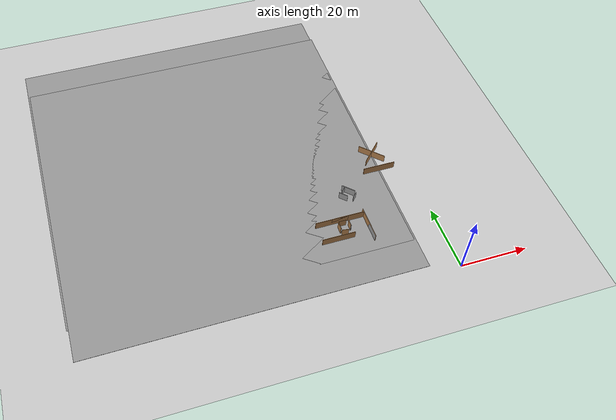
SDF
<sdf version="1.5">
 <world name="default">
  <model name="ground_plane">
   <static>1</static>
   <link name="link">
    <collision name="collision">
     <geometry><plane><normal>0 0 1</normal><size>100 100</size></plane></geometry>
     <surface><friction><ode><mu>100</mu><mu2>50</mu2></ode></friction></surface>
    </collision>
    <visual name="visual">
     <cast_shadows>0</cast_shadows>
     <geometry><plane><normal>0 0 1</normal><size>100 100</size></plane></geometry>
     <material>
      <script><uri>file://media/materials/scripts/gazebo.material</uri><name>Gazebo/Grey</name></script>
     </material>
    </visual>
   </link>
  </model>
  <model name="ground_plane_7">
   <static>1</static>
   <link name="link">
    <collision name="collision">
     <geometry><plane><normal>0 0 1</normal><size>100 100</size></plane></geometry>
     <surface><friction><ode><mu>100</mu><mu2>50</mu2></ode></friction></surface>
    </collision>
    <visual name="visual">
     <cast_shadows>0</cast_shadows>
     <geometry><plane><normal>0 0 1</normal><size>100 100</size></plane></geometry>
     <material>
      <script><uri>file://media/materials/scripts/gazebo.material</uri><name>Gazebo/Grey</name></script>
     </material>
    </visual>
   </link>
   <pose>-58.5079 52.5615 0 0 -0 0</pose>
  </model>
  <model name="ground_plane_9">
   <static>1</static>
   <link name="link">
    <collision name="collision">
     <geometry><plane><normal>0 0 1</normal><size>100 100</size></plane></geometry>
     <surface><friction><ode><mu>100</mu><mu2>50</mu2></ode></friction></surface>
    </collision>
    <visual name="visual">
     <cast_shadows>0</cast_shadows>
     <geometry><plane><normal>0 0 1</normal><size>100 100</size></plane></geometry>
     <material>
      <script><uri>file://media/materials/scripts/gazebo.material</uri><name>Gazebo/Grey</name></script>
     </material>
    </visual>
   </link>
   <pose>-59 62 0 0 -0 0</pose>
  </model>
  <model name="wall-10m-ofoghi_12">
   <pose>-9 39 0 0 -0 0</pose>
   <link name="Wall_22">
    <collision name="Wall_22_Collision">
     <geometry><box><size>10 0.15 2.5</size></box></geometry>
     <pose>0 0 1.25 0 -0 0</pose>
    </collision>
    <visual name="Wall_22_Visual">
     <pose>0 0 1.25 0 -0 0</pose>
     <geometry><box><size>10 0.15 2.5</size></box></geometry>
     <material>
      <script><uri>file://media/materials/scripts/gazebo.material</uri><name>Gazebo/Wood</name></script>
      <ambient>1 1 1 1</ambient>
     </material>
    </visual>
   </link>
   <static>1</static>
  </model>
  <model name="obs3">
   <pose>-9 45 0 0 -0 0</pose>
   <link name="Wall_0">
    <collision name="Wall_0_Collision">
     <geometry><box><size>8.63528 0.15 2.5</size></box></geometry>
     <pose>0 0 1.25 0 -0 0</pose>
    </collision>
    <visual name="Wall_0_Visual">
     <pose>0 0 1.25 0 -0 0</pose>
     <geometry><box><size>8.63528 0.15 2.5</size></box></geometry>
     <material>
      <script><uri>file://media/materials/scripts/gazebo.material</uri><name>Gazebo/Wood</name></script>
      <ambient>1 1 1 1</ambient>
     </material>
    </visual>
    <pose>0 0 0 0 0 -0.785398</pose>
   </link>
   <link name="Wall_2">
    <collision name="Wall_2_Collision">
     <geometry><box><size>8.63528 0.15 2.5</size></box></geometry>
     <pose>0 0 1.25 0 -0 0</pose>
    </collision>
    <visual name="Wall_2_Visual">
     <pose>0 0 1.25 0 -0 0</pose>
     <geometry><box><size>8.63528 0.15 2.5</size></box></geometry>
     <material>
      <script><uri>file://media/materials/scripts/gazebo.material</uri><name>Gazebo/Wood</name></script>
      <ambient>1 1 1 1</ambient>
     </material>
    </visual>
    <pose>0 0 0 0 0 -2.35619</pose>
   </link>
   <static>1</static>
  </model>
  <model name="obs2_1">
   <pose>-22 32.4816 0 0 -0 0</pose>
   <link name="Wall_0">
    <collision name="Wall_0_Collision">
     <geometry><box><size>2 0.15 2.5</size></box></geometry>
     <pose>0 0 1.25 0 -0 0</pose>
    </collision>
    <visual name="Wall_0_Visual">
     <pose>0 0 1.25 0 -0 0</pose>
     <geometry><box><size>2 0.15 2.5</size></box></geometry>
     <material>
      <script><uri>file://media/materials/scripts/gazebo.material</uri><name>Gazebo/Grey</name></script>
      <ambient>1 1 1 1</ambient>
     </material>
    </visual>
    <pose>-0.796332 1.10862 0 0 -0 0.785398</pose>
   </link>
   <link name="Wall_2">
    <collision name="Wall_2_Collision">
     <geometry><box><size>4.25 0.15 2.5</size></box></geometry>
     <pose>0 0 1.25 0 -0 0</pose>
    </collision>
    <visual name="Wall_2_Visual">
     <pose>0 0 1.25 0 -0 0</pose>
     <geometry><box><size>4.25 0.15 2.5</size></box></geometry>
     <material>
      <script><uri>file://media/materials/scripts/gazebo.material</uri><name>Gazebo/Grey</name></script>
      <ambient>1 1 1 1</ambient>
     </material>
    </visual>
    <pose>0.773928 0.982661 0 0 0 -0.785398</pose>
   </link>
   <link name="Wall_4">
    <collision name="Wall_4_Collision">
     <geometry><box><size>2.75 0.15 2.5</size></box></geometry>
     <pose>0 0 1.25 0 -0 0</pose>
    </collision>
    <visual name="Wall_4_Visual">
     <pose>0 0 1.25 0 -0 0</pose>
     <geometry><box><size>2.75 0.15 2.5</size></box></geometry>
     <material>
      <script><uri>file://media/materials/scripts/gazebo.material</uri><name>Gazebo/Grey</name></script>
      <ambient>1 1 1 1</ambient>
     </material>
    </visual>
    <pose>-1.45556 -0.740711 0 0 0 -0.785398</pose>
   </link>
   <link name="Wall_6">
    <collision name="Wall_6_Collision">
     <geometry><box><size>2 0.15 2.5</size></box></geometry>
     <pose>0 0 1.25 0 -0 0</pose>
    </collision>
    <visual name="Wall_6_Visual">
     <pose>0 0 1.25 0 -0 0</pose>
     <geometry><box><size>2 0.15 2.5</size></box></geometry>
     <material>
      <script><uri>file://media/materials/scripts/gazebo.material</uri><name>Gazebo/Grey</name></script>
      <ambient>1 1 1 1</ambient>
     </material>
    </visual>
    <pose>1.72073 -1.77816 0 0 -0 0.785398</pose>
   </link>
   <static>1</static>
  </model>
  <model name="obs1_9">
   <pose>-27 21 0 0 -0 0</pose>
   <link name="Wall_10">
    <collision name="Wall_10_Collision">
     <geometry><box><size>2 0.15 2.5</size></box></geometry>
     <pose>0 0 1.25 0 -0 0</pose>
    </collision>
    <visual name="Wall_10_Visual">
     <pose>0 0 1.25 0 -0 0</pose>
     <geometry><box><size>2 0.15 2.5</size></box></geometry>
     <material>
      <script><uri>file://media/materials/scripts/gazebo.material</uri><name>Gazebo/Wood</name></script>
      <ambient>1 1 1 1</ambient>
     </material>
    </visual>
    <pose>-0.505188 -1.46687 0 0 0 -0.261799</pose>
   </link>
   <link name="Wall_2">
    <collision name="Wall_2_Collision">
     <geometry><box><size>2.25 0.15 2.5</size></box></geometry>
     <pose>0 0 1.25 0 -0 0</pose>
    </collision>
    <visual name="Wall_2_Visual">
     <pose>0 0 1.25 0 -0 0</pose>
     <geometry><box><size>2.25 0.15 2.5</size></box></geometry>
     <material>
      <script><uri>file://media/materials/scripts/gazebo.material</uri><name>Gazebo/Wood</name></script>
      <ambient>1 1 1 1</ambient>
     </material>
    </visual>
    <pose>-1.58039 0.313508 0 0 0 -1.5708</pose>
   </link>
   <link name="Wall_5">
    <collision name="Wall_5_Collision">
     <geometry><box><size>2.25 0.15 2.5</size></box></geometry>
     <pose>0 0 1.25 0 -0 0</pose>
    </collision>
    <visual name="Wall_5_Visual">
     <pose>0 0 1.25 0 -0 0</pose>
     <geometry><box><size>2.25 0.15 2.5</size></box></geometry>
     <material>
      <script><uri>file://media/materials/scripts/gazebo.material</uri><name>Gazebo/Wood</name></script>
      <ambient>1 1 1 1</ambient>
     </material>
    </visual>
    <pose>-0.185262 1.72313 0 0 -0 0</pose>
   </link>
   <link name="Wall_7">
    <collision name="Wall_7_Collision">
     <geometry><box><size>2 0.15 2.5</size></box></geometry>
     <pose>0 0 1.25 0 -0 0</pose>
    </collision>
    <visual name="Wall_7_Visual">
     <pose>0 0 1.25 0 -0 0</pose>
     <geometry><box><size>2 0.15 2.5</size></box></geometry>
     <material>
      <script><uri>file://media/materials/scripts/gazebo.material</uri><name>Gazebo/Wood</name></script>
      <ambient>1 1 1 1</ambient>
     </material>
    </visual>
    <pose>1.58039 0.398833 0 0 0 -1.5708</pose>
   </link>
   <link name="Wall_8">
    <collision name="Wall_8_Collision">
     <geometry><box><size>0.15 0.15 2.5</size></box></geometry>
     <pose>0 0 1.25 0 -0 0</pose>
    </collision>
    <visual name="Wall_8_Visual">
     <pose>0 0 1.25 0 -0 0</pose>
     <geometry><box><size>0.15 0.15 2.5</size></box></geometry>
     <material>
      <script><uri>file://media/materials/scripts/gazebo.material</uri><name>Gazebo/Grey</name></script>
      <ambient>1 1 1 1</ambient>
     </material>
    </visual>
    <pose>1.58039 -0.526167 0 0 -0 0</pose>
   </link>
   <static>1</static>
  </model>
  <model name="wall-10m-amodi_9">
   <pose>-20 20 0 0 -0 0</pose>
   <link name="Wall_24">
    <collision name="Wall_24_Collision">
     <geometry><box><size>10 0.15 2.5</size></box></geometry>
     <pose>0 0 1.25 0 -0 0</pose>
    </collision>
    <visual name="Wall_24_Visual">
     <pose>0 0 1.25 0 -0 0</pose>
     <geometry><box><size>10 0.15 2.5</size></box></geometry>
     <material>
      <script><uri>file://media/materials/scripts/gazebo.material</uri><name>Gazebo/Grey</name></script>
      <ambient>1 1 1 1</ambient>
     </material>
    </visual>
    <pose>0 -0 0 0 0 -1.5708</pose>
   </link>
   <link name="Wall_25">
    <collision name="Wall_25_Collision">
     <geometry><box><size>10 0.15 2.5</size></box></geometry>
     <pose>0 0 1.25 0 -0 0</pose>
    </collision>
    <visual name="Wall_25_Visual">
     <pose>0 0 1.25 0 -0 0</pose>
     <geometry><box><size>10 0.15 2.5</size></box></geometry>
     <material>
      <script><uri>file://media/materials/scripts/gazebo.material</uri><name>Gazebo/Wood</name></script>
      <ambient>1 1 1 1</ambient>
     </material>
    </visual>
    <pose>0 -0 0 0 -0 1.5708</pose>
   </link>
   <static>1</static>
  </model>
  <model name="wall-10m-ofoghi_22">
   <pose>-25 24 0 0 -0 0</pose>
   <link name="Wall_22">
    <collision name="Wall_22_Collision">
     <geometry><box><size>10 0.15 2.5</size></box></geometry>
     <pose>0 0 1.25 0 -0 0</pose>
    </collision>
    <visual name="Wall_22_Visual">
     <pose>0 0 1.25 0 -0 0</pose>
     <geometry><box><size>10 0.15 2.5</size></box></geometry>
     <material>
      <script><uri>file://media/materials/scripts/gazebo.material</uri><name>Gazebo/Wood</name></script>
      <ambient>1 1 1 1</ambient>
     </material>
    </visual>
   </link>
   <static>1</static>
  </model>
  <model name="wall-10m-ofoghi_23">
   <pose>-30 24 0 0 -0 0</pose>
   <link name="Wall_22">
    <collision name="Wall_22_Collision">
     <geometry><box><size>10 0.15 2.5</size></box></geometry>
     <pose>0 0 1.25 0 -0 0</pose>
    </collision>
    <visual name="Wall_22_Visual">
     <pose>0 0 1.25 0 -0 0</pose>
     <geometry><box><size>10 0.15 2.5</size></box></geometry>
     <material>
      <script><uri>file://media/materials/scripts/gazebo.material</uri><name>Gazebo/Wood</name></script>
      <ambient>1 1 1 1</ambient>
     </material>
    </visual>
   </link>
   <static>1</static>
  </model>
  <model name="wall-10m-ofoghi_25">
   <pose>-30 18 0 0 -0 0</pose>
   <link name="Wall_22">
    <collision name="Wall_22_Collision">
     <geometry><box><size>10 0.15 2.5</size></box></geometry>
     <pose>0 0 1.25 0 -0 0</pose>
    </collision>
    <visual name="Wall_22_Visual">
     <pose>0 0 1.25 0 -0 0</pose>
     <geometry><box><size>10 0.15 2.5</size></box></geometry>
     <material>
      <script><uri>file://media/materials/scripts/gazebo.material</uri><name>Gazebo/Wood</name></script>
      <ambient>1 1 1 1</ambient>
     </material>
    </visual>
   </link>
   <static>1</static>
  </model>
 </world>
</sdf>
